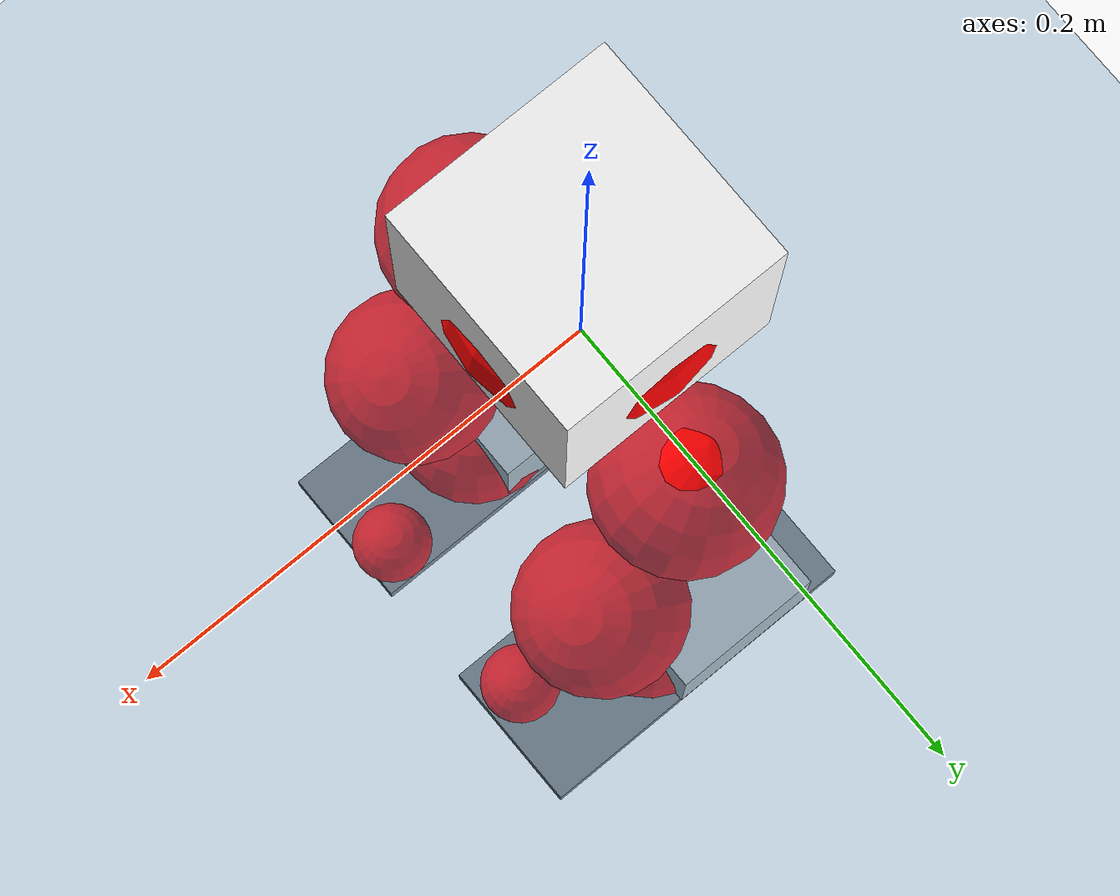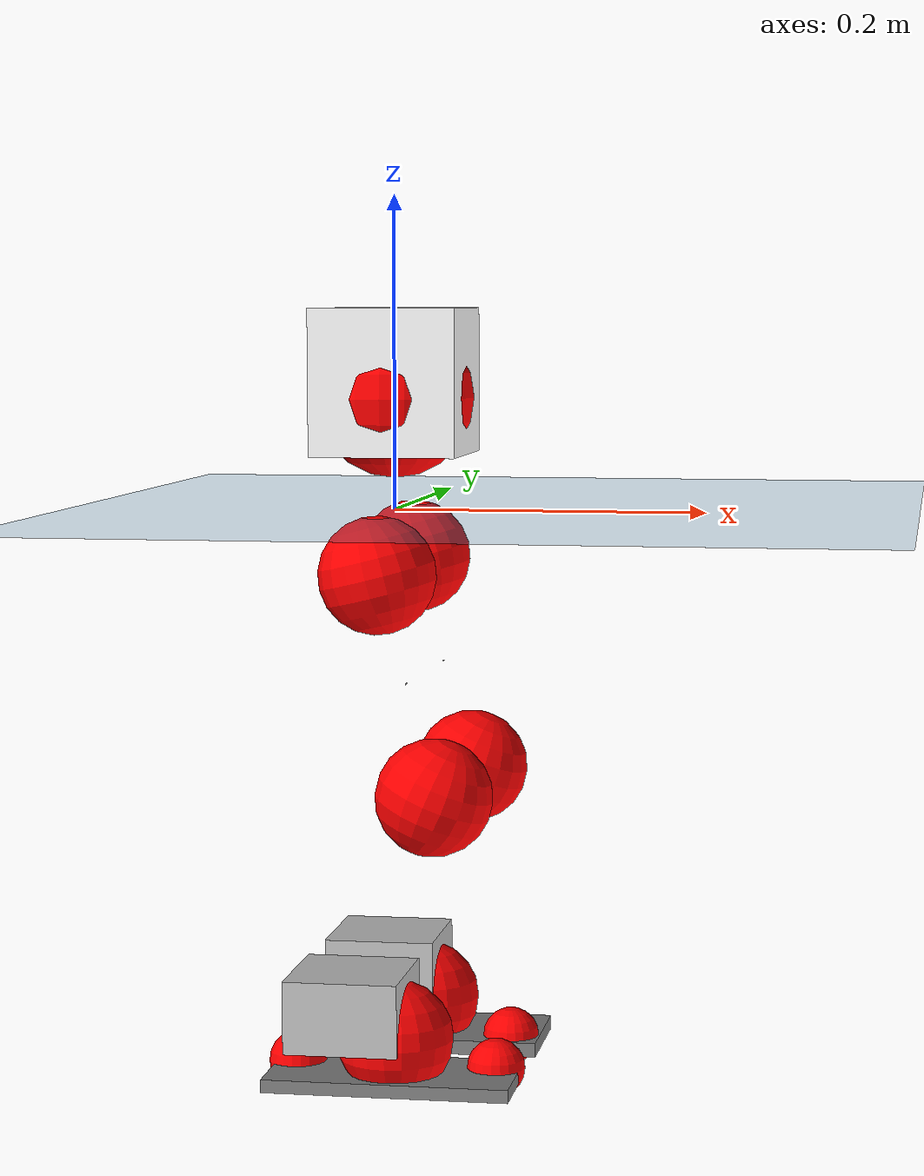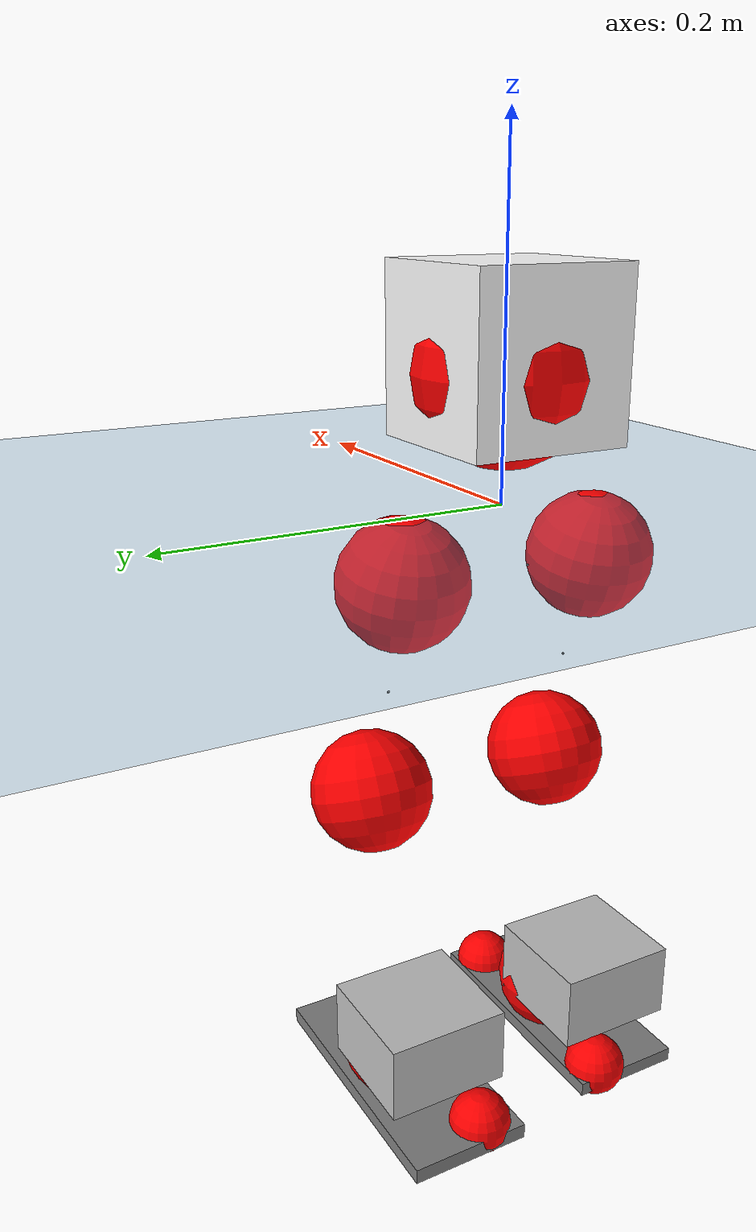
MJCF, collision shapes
<mujoco model="pi_12dof_release_v1">
  <compiler angle="radian" assetdir="assets" balanceinertia="true" inertiafromgeom="false"/>

  <option timestep="0.005" density="1.2" viscosity="2e-05"/>

  <size nkey="1"/>

  <visual>
    <quality shadowsize="8192"/>
    <map shadowclip="0.5"/>
  </visual>

  <default>
    <default class="/">
      <joint armature="0.01" damping="0.01" frictionloss="0.01"/>
      <geom contype="0" conaffinity="0" group="1" solref="-1000 -80"/>
      <site size="0.01 0.005 0.005" group="5"/>
      <general forcelimited="true" biastype="affine" gainprm="20" biasprm="0 -20 -0.5"/>
      <default class="foot">
        <geom size="0.0845 0.036 0.005" type="box" condim="6" group="4" priority="1" friction="0.9 0.2 0.2" solimp="0.015 1 0.005"/>
      </default>
      <default class="reward_collision_sphere">
        <geom group="5" rgba="1 0 0 1"/>
      </default>
    </default>
  </default>

  <asset>
    <texture type="skybox" colorspace="auto" name="//unnamed_texture_0" builtin="gradient" rgb1="0.95 0.95 0.95" rgb2="0.95 0.95 0.95" width="100" height="600"/>
    <texture type="2d" colorspace="auto" name="texplane" builtin="checker" rgb1="0.345 0.575 0.748" rgb2="0.345 0.575 0.748" markrgb="1 1 1" width="512" height="512"/>
    <material name="MatPlane" class="/" texture="texplane" texuniform="true" texrepeat="2 2" specular="0.9"/>
    <mesh name="baselink_1" class="/" file="baselink_1.STL"/>
    <mesh name="r_hip_pitch_link" class="/" file="r_hip_pitch_link.STL"/>
    <mesh name="r_hip_roll_link" class="/" file="r_hip_roll_link.STL"/>
    <mesh name="r_thigh_link" class="/" file="r_thigh_link.STL"/>
    <mesh name="r_calf_link" class="/" file="r_calf_link.STL"/>
    <mesh name="r_ankle_pitch_link" class="/" file="r_ankle_pitch_link.STL"/>
    <mesh name="r_ankle_roll_link" class="/" file="r_ankle_roll_link.STL"/>
    <mesh name="l_hip_pitch_link" class="/" file="l_hip_pitch_link.STL"/>
    <mesh name="l_hip_roll_link" class="/" file="l_hip_roll_link.STL"/>
    <mesh name="l_thigh_link" class="/" file="l_thigh_link.STL"/>
    <mesh name="l_calf_link" class="/" file="l_calf_link.STL"/>
    <mesh name="l_ankle_pitch_link" class="/" file="l_ankle_pitch_link.STL"/>
    <mesh name="l_ankle_roll_link" class="/" file="l_ankle_roll_link.STL"/>
  </asset>

  <worldbody>
    <geom name="floor" class="/" size="100 100 0.125" type="plane" group="0" material="MatPlane"/>
    <light name="toplight_shadow" class="/" pos="0 0 5" dir="0.0990148 0.0990148 -0.990148" type="directional" ambient="0.04 0.04 0.04" diffuse="0.55 0.55 0.55" specular="0.12 0.12 0.12"/>
    <light name="toplight_fill" class="/" pos="0 0 5" dir="0.0990148 0.0990148 -0.990148" type="directional" castshadow="false" ambient="0.04 0.04 0.04" diffuse="0.3 0.3 0.3" specular="0.08 0.08 0.08"/>
    <body name="trunk" pos="2.10023e-07 -9.48072e-05 -0.00134392" quat="1 -2.03693e-05 -0.000170914 -2.66268e-05">
      <inertial pos="0.00262388 0.00210685 0.0439222" quat="0.695573 0.00980418 0.00971085 0.718323" mass="1.72665" diaginertia="0.0080473 0.00283856 0.00511042"/>
      <joint name="//unnamed_joint_0" type="free"/>
      <geom name="//unnamed_geom_1" class="/" type="mesh" density="0" rgba="1 1 1 1" mesh="baselink_1"/>
      <geom name="//unnamed_geom_2" class="/" size="0.0465157 0.0465157 0.0465157" pos="0 0 0.0834129" type="box" rgba="1 1 1 1"/>
      <geom name="//unnamed_geom_3" class="reward_collision_sphere" size="0.0511672" pos="0 0 0.0729863"/>
      <site name="imu" class="/" pos="-0.00475866 -0.00113689 -0.00419334" size="0.00930314"/>
      <camera name="track" class="/" pos="0 -1.5849 0" quat="0.707107 0.707107 0 0" mode="trackcom"/>
      <camera name="ego_camera" class="/" pos="0.0716872 0 0.187679" quat="-0.5 -0.5 0.5 0.5"/>
      <body name="r_hip_pitch_link" pos="0.000157186 -0.0184425 -0.035456" quat="0.992205 -0.000437766 -0.124616 0.000217136">
        <inertial pos="-0.00116892 -0.0444064 0.000296394" quat="-0.0195269 0.705413 -0.029227 0.707925" mass="0.305786" diaginertia="8.78753e-05 3.10092e-05 0.000104208"/>
        <joint name="r_hip_pitch_joint" class="/" pos="0 0 0" axis="0.0132337 -0.999903 -0.00427219" stiffness="0.0039944" range="-1.74873 1.22723" armature="0.00914259" damping="0.00874527" frictionloss="0.00855154"/>
        <geom name="//unnamed_geom_4" class="/" type="mesh" density="0" rgba="0.75294 0.75294 0.75294 1" mesh="r_hip_pitch_link"/>
        <geom name="//unnamed_geom_5" class="/" size="0.000465157 0.000465157 0.000465157" type="box" rgba="0.75294 0.75294 0.75294 1"/>
        <body name="r_hip_roll_link" pos="0.000533223 -0.0438438 0.000198094" quat="1 3.76917e-06 -1.47853e-06 -8.56307e-06">
          <inertial pos="-0.00107693 -0.000752831 -0.064672" quat="0.704445 -0.0791829 -0.0840049 0.700307" mass="0.299773" diaginertia="0.000266984 8.62561e-05 0.00014857"/>
          <joint name="r_hip_roll_joint" class="/" pos="0 0 0" axis="-0.999962 -0.00815367 0.00318498" range="-0.11842 0.490858" armature="0.00948143" damping="0.00823448" frictionloss="0.0094705"/>
          <geom name="//unnamed_geom_6" class="/" type="mesh" density="0" rgba="0.75294 0.75294 0.75294 1" mesh="r_hip_roll_link"/>
          <geom name="//unnamed_geom_7" class="/" size="0.000465157 0.000465157 0.000465157" type="box" rgba="0.75294 0.75294 0.75294 1"/>
          <geom name="//unnamed_geom_8" class="reward_collision_sphere" size="0.0372125"/>
          <body name="r_thigh_link" pos="0.000339494 0.00208622 -0.0701845" quat="0.999999 0.000564602 0.000951309 -0.00050461">
            <inertial pos="0.000523054 0.000684901 -0.0498769" quat="0.737348 0.675513 -6.46263e-05 0.000113219" mass="0.089957" diaginertia="9.98064e-05 2.8891e-05 7.04454e-05"/>
            <joint name="r_thigh_joint" class="/" pos="0 0 0" axis="4.32675e-06 -0.000125049 -1" range="-0.29778 0.565302" armature="0.0102518" damping="0.00276621" frictionloss="0.00924162"/>
            <geom name="//unnamed_geom_9" class="/" type="mesh" density="0" rgba="0.75294 0.75294 0.75294 1" mesh="r_thigh_link"/>
            <geom name="//unnamed_geom_10" class="/" size="0.000465157 0.000465157 0.000465157" type="box" rgba="0.75294 0.75294 0.75294 1"/>
            <body name="r_calf_link" pos="-0.000533511 -0.00150356 -0.0733652" quat="0.94793 0.000485501 0.318479 0.000206897">
              <inertial pos="-0.000878934 -0.00168935 -0.0720328" quat="0.999982 -0.00189126 -0.000308659 0.00570435" mass="0.62734" diaginertia="0.00270767 0.0010629 0.000214974"/>
              <joint name="r_calf_joint" class="/" pos="0 0 0" axis="0.0129497 -0.99991 0.00348834" stiffness="0.00632736" range="-1.64005 0.652175" armature="0.00927281" damping="0.00679169" frictionloss="0.00979695"/>
              <geom name="//unnamed_geom_11" class="/" type="mesh" density="0" rgba="0.75294 0.75294 0.75294 1" mesh="r_calf_link"/>
              <geom name="//unnamed_geom_12" class="/" size="0.000465157 0.000465157 0.000465157" type="box" rgba="0.75294 0.75294 0.75294 1"/>
              <geom name="//unnamed_geom_13" class="reward_collision_sphere" size="0.0372125"/>
              <body name="r_ankle_pitch_link" pos="0.00335974 0.00125495 -0.145971" quat="0.980014 0.000319399 -0.198928 -0.000331782">
                <inertial pos="0.0043162 0.00323558 -0.0001627" quat="0.00238532 0.707925 -0.00280187 0.706279" mass="0.146561" diaginertia="0.000245681 7.20796e-05 0.00015113"/>
                <joint name="r_ankle_pitch_joint" class="/" pos="0 0 0" axis="-0.00145004 -0.999994 0.00313259" range="-1.3161 0.492567" armature="0.00938128" damping="0.0219657" frictionloss="0.010301"/>
                <geom name="//unnamed_geom_14" class="/" type="mesh" density="0" rgba="0.75294 0.75294 0.75294 1" mesh="r_ankle_pitch_link"/>
                <geom name="//unnamed_geom_15" class="/" size="0.0362822 0.0372125 0.0232578" type="box" rgba="0.75294 0.75294 0.75294 1"/>
                <body name="r_ankle_roll_link" pos="0.0755955 0.00151647 0.000579011" quat="1 -4.03672e-05 -8.29588e-05 -0.000240964">
                  <inertial pos="-0.0222123 0.00097181 -0.0124971" quat="0.556678 0.43077 0.438365 0.558913" mass="0.402861" diaginertia="0.000906303 0.000320534 0.000347325"/>
                  <joint name="r_ankle_roll_joint" class="/" pos="0 0 0" axis="-0.999999 0.000831316 0.00143756" range="-0.148945 0.159783" armature="0.00929596" damping="0.00770169" frictionloss="0.0105319"/>
                  <geom name="//unnamed_geom_16" class="/" type="mesh" density="0" rgba="0.75294 0.75294 0.75294 1" mesh="r_ankle_roll_link"/>
                  <geom name="//unnamed_geom_17" class="/" type="mesh" rgba="0.75294 0.75294 0.75294 1" mesh="r_ankle_roll_link"/>
                  <geom name="right_foot" class="foot" size="0.0786041 0.0342802 0.00416255" pos="-0.0487473 0 -0.0458771"/>
                  <geom name="//unnamed_geom_19" class="reward_collision_sphere" size="0.0372125" pos="-0.0477914 0 -0.0208532"/>
                  <geom name="//unnamed_geom_20" class="reward_collision_sphere" size="0.0186063" pos="0.0143374 0.015849 -0.0417064"/>
                  <geom name="//unnamed_geom_21" class="reward_collision_sphere" size="0.0186063" pos="-0.114699 0.015849 -0.0417064"/>
                  <site name="right_foot" class="foot" pos="-0.0487473 0 -0.0458771" size="0.00930314"/>
                </body>
              </body>
            </body>
          </body>
        </body>
      </body>
      <body name="l_hip_pitch_link" pos="0.000652657 0.0198594 -0.0342678" quat="0.992197 3.56788e-05 -0.124676 0.000344749">
        <inertial pos="0.00110844 0.0403613 -0.00106965" quat="-0.0468706 0.707147 0.0196852 0.705237" mass="0.303235" diaginertia="0.000101087 3.32183e-05 0.000124752"/>
        <joint name="l_hip_pitch_joint" class="/" pos="0 0 0" axis="0.00145314 0.999999 0.00058053" stiffness="0.000296977" range="-1.20984 1.70348" armature="0.00960345" damping="0.0105138" frictionloss="0.0083382"/>
        <geom name="//unnamed_geom_22" class="/" type="mesh" density="0" rgba="0.75294 0.75294 0.75294 1" mesh="l_hip_pitch_link"/>
        <geom name="//unnamed_geom_23" class="/" size="0.000465157 0.000465157 0.000465157" type="box" rgba="0.75294 0.75294 0.75294 1"/>
        <body name="l_hip_roll_link" pos="-0.000154732 0.0421268 7.73637e-05" quat="1 -0.000128543 -0.000123621 6.2653e-05">
          <inertial pos="-0.000611792 -0.00127584 -0.0632547" quat="0.700059 -0.0723657 -0.0803003 0.705856" mass="0.314817" diaginertia="0.000276228 8.91723e-05 0.000162979"/>
          <joint name="l_hip_roll_joint" class="/" pos="0 0 0" axis="-0.99999 0.00317466 0.00325507" range="-0.447634 0.0668256" armature="0.00896032" damping="0.00266374" frictionloss="0.00943913"/>
          <geom name="//unnamed_geom_24" class="/" type="mesh" density="0" rgba="0.75294 0.75294 0.75294 1" mesh="l_hip_roll_link"/>
          <geom name="//unnamed_geom_25" class="/" size="0.000465157 0.000465157 0.000465157" type="box" rgba="0.75294 0.75294 0.75294 1"/>
          <geom name="//unnamed_geom_26" class="reward_collision_sphere" size="0.0372125"/>
          <body name="l_thigh_link" pos="0.00125179 -0.0010217 -0.0724154" quat="0.999999 0.000217729 -0.000677867 -0.000797428">
            <inertial pos="0.00228307 -0.000461351 -0.0509831" quat="0.675578 0.737288 0.000225436 -5.00062e-05" mass="0.0909919" diaginertia="0.000104296 3.14828e-05 7.61186e-05"/>
            <joint name="l_thigh_joint" class="/" pos="0 0 0" axis="0.00481302 -0.00245595 -0.999985" range="-0.621743 0.255052" armature="0.00951952" damping="0.0142484" frictionloss="0.00866958"/>
            <geom name="//unnamed_geom_27" class="/" type="mesh" density="0" rgba="0.75294 0.75294 0.75294 1" mesh="l_thigh_link"/>
            <geom name="//unnamed_geom_28" class="/" size="0.000465157 0.000465157 0.000465157" type="box" rgba="0.75294 0.75294 0.75294 1"/>
            <body name="l_calf_link" pos="0.00082094 0.0017504 -0.0732097" quat="0.947729 0.000237315 0.319073 0.00108915">
              <inertial pos="-0.00012875 0.00214719 -0.0730912" quat="0.999897 -0.000983299 -0.012476 0.00702265" mass="0.655819" diaginertia="0.00280094 0.00108235 0.000212342"/>
              <joint name="l_calf_joint" class="/" pos="0 0 0" axis="-0.00122904 0.999997 -0.00200156" range="-0.668652 1.65701" armature="0.00933981" damping="0.00253109" frictionloss="0.00890818"/>
              <geom name="//unnamed_geom_29" class="/" type="mesh" density="0" rgba="0.75294 0.75294 0.75294 1" mesh="l_calf_link"/>
              <geom name="//unnamed_geom_30" class="/" size="0.000465157 0.000465157 0.000465157" type="box" rgba="0.75294 0.75294 0.75294 1"/>
              <geom name="//unnamed_geom_31" class="reward_collision_sphere" size="0.0372125"/>
              <body name="l_ankle_pitch_link" pos="0.000674319 -0.000392044 -0.148445" quat="0.980077 -1.91732e-05 -0.198617 -7.50191e-06">
                <inertial pos="0.0048346 0.00190112 0.000101978" quat="-0.00324304 0.705564 0.0109886 0.708553" mass="0.136839" diaginertia="0.000235709 6.69168e-05 0.000142177"/>
                <joint name="l_ankle_pitch_joint" class="/" pos="0 0 0" axis="0.00466083 0.999914 -0.0122848" range="-0.506857 1.29909" armature="0.00930466" damping="0" frictionloss="0.00974603"/>
                <geom name="//unnamed_geom_32" class="/" type="mesh" density="0" rgba="0.75294 0.75294 0.75294 1" mesh="l_ankle_pitch_link"/>
                <geom name="//unnamed_geom_33" class="/" size="0.0362822 0.0372125 0.0232578" type="box" rgba="0.75294 0.75294 0.75294 1"/>
                <body name="l_ankle_roll_link" pos="0.0716297 -0.00154569 -0.00026409" quat="1 -0.00052865 -4.81048e-05 -0.000621887">
                  <inertial pos="-0.0241653 -0.00103025 -0.0151728" quat="0.559525 0.435985 0.441359 0.549591" mass="0.405382" diaginertia="0.00089601 0.00032685 0.000360941"/>
                  <joint name="l_ankle_roll_joint" class="/" pos="0 0 0" axis="-0.99991 0.00412338 -0.0127718" range="-0.151536 0.0996625" armature="0.00939673" damping="0.00760918" frictionloss="0.0080743"/>
                  <geom name="//unnamed_geom_34" class="/" type="mesh" density="0" rgba="0.75294 0.75294 0.75294 1" mesh="l_ankle_roll_link"/>
                  <geom name="//unnamed_geom_35" class="/" type="mesh" rgba="0.75294 0.75294 0.75294 1" mesh="l_ankle_roll_link"/>
                  <geom name="left_foot" class="foot" size="0.0824596 0.0366934 0.00463069" pos="-0.0487473 0 -0.0458771"/>
                  <geom name="//unnamed_geom_37" class="reward_collision_sphere" size="0.0372125" pos="-0.0477914 0 -0.0208532"/>
                  <geom name="//unnamed_geom_38" class="reward_collision_sphere" size="0.0186063" pos="0.0143374 -0.015849 -0.0417064"/>
                  <geom name="//unnamed_geom_39" class="reward_collision_sphere" size="0.0186063" pos="-0.114699 -0.015849 -0.0417064"/>
                  <site name="left_foot" class="foot" pos="-0.0487473 0 -0.0458771" size="0.00930314"/>
                </body>
              </body>
            </body>
          </body>
        </body>
      </body>
    </body>
  </worldbody>

  <contact>
    <pair class="/" geom1="floor" geom2="right_foot" name="//unnamed_contact_1"/>
    <pair class="/" geom1="floor" geom2="left_foot" name="//unnamed_contact_0"/>
  </contact>

  <actuator>
    <general name="r_hip_pitch_joint" class="/" joint="r_hip_pitch_joint" forcerange="-18.6004 18.6004" gainprm="18.998" biasprm="0 -18.998 -0.452244"/>
    <general name="r_hip_roll_joint" class="/" joint="r_hip_roll_joint" forcerange="-19.6747 19.6747" gainprm="18.998" biasprm="0 -18.998 -0.452244"/>
    <general name="r_thigh_joint" class="/" joint="r_thigh_joint" forcerange="-19.108 19.108" gainprm="18.998" biasprm="0 -18.998 -0.452244"/>
    <general name="r_calf_joint" class="/" joint="r_calf_joint" forcerange="-18.7893 18.7893" gainprm="18.998" biasprm="0 -18.998 -0.452244"/>
    <general name="r_ankle_pitch_joint" class="/" joint="r_ankle_pitch_joint" forcerange="-20.13 20.13" gainprm="18.998" biasprm="0 -18.998 -0.452244"/>
    <general name="r_ankle_roll_joint" class="/" joint="r_ankle_roll_joint" forcerange="-21.2965 21.2965" gainprm="18.998" biasprm="0 -18.998 -0.452244"/>
    <general name="l_hip_pitch_joint" class="/" joint="l_hip_pitch_joint" forcerange="-19.3913 19.3913" gainprm="18.998" biasprm="0 -18.998 -0.452244"/>
    <general name="l_hip_roll_joint" class="/" joint="l_hip_roll_joint" forcerange="-17.6129 17.6129" gainprm="18.998" biasprm="0 -18.998 -0.452244"/>
    <general name="l_thigh_joint" class="/" joint="l_thigh_joint" forcerange="-18.7815 18.7815" gainprm="18.998" biasprm="0 -18.998 -0.452244"/>
    <general name="l_calf_joint" class="/" joint="l_calf_joint" forcerange="-20.301 20.301" gainprm="18.998" biasprm="0 -18.998 -0.452244"/>
    <general name="l_ankle_pitch_joint" class="/" joint="l_ankle_pitch_joint" forcerange="-18.8083 18.8083" gainprm="18.998" biasprm="0 -18.998 -0.452244"/>
    <general name="l_ankle_roll_joint" class="/" joint="l_ankle_roll_joint" forcerange="-19.7386 19.7386" gainprm="18.998" biasprm="0 -18.998 -0.452244"/>
  </actuator>

  <sensor>
    <gyro site="imu" name="imu_angular_velocity"/>
    <velocimeter site="imu" name="imu_linear_velocity"/>
    <framelinvel objtype="site" objname="left_foot" name="left_foot_global_linear_velocity"/>
    <framelinvel objtype="site" objname="right_foot" name="right_foot_global_linear_velocity"/>
  </sensor>

  <keyframe>
    <key name="home" qpos="0 0 0.291 1 0 0 0 0.4 0 0 -0.8 0.4 0 -0.4 0 0 0.8 -0.4 0"/>
  </keyframe>
</mujoco>
